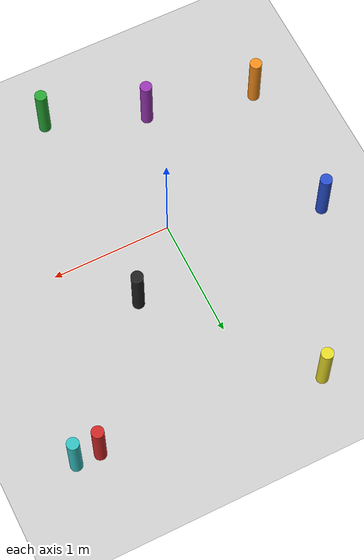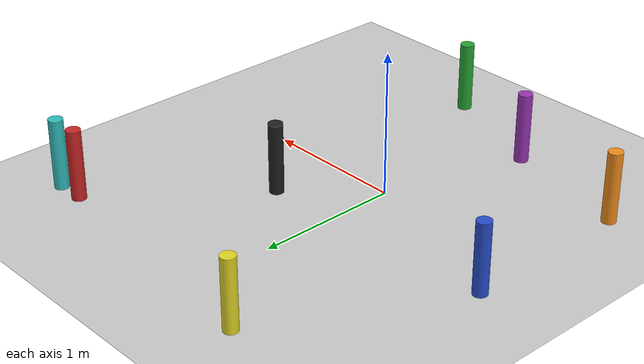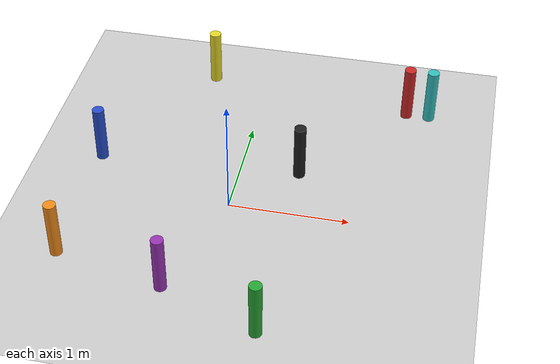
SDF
<sdf version="1.6">
 <world name="default">
  <include><uri>model://ground_plane</uri></include>
  <include><uri>model://sun</uri></include>
  <scene><shadows>false</shadows></scene>
  <physics type="ode">
   <real_time_update_rate>1000.0</real_time_update_rate>
   <max_step_size>0.001</max_step_size>
   <real_time_factor>1</real_time_factor>
   <ode>
    <solver>
     <type>quick</type>
     <iters>150</iters>
     <precon_iters>0</precon_iters>
     <sor>1.400000</sor>
     <use_dynamic_moi_rescaling>1</use_dynamic_moi_rescaling>
    </solver>
    <constraints>
     <cfm>0.00001</cfm>
     <erp>0.2</erp>
     <contact_max_correcting_vel>2000.000000</contact_max_correcting_vel>
     <contact_surface_layer>0.01000</contact_surface_layer>
    </constraints>
   </ode>
  </physics>
  <model name="turtlebot3_dqn_obstacles">
   <plugin name="obstacles" filename="libobstacles.so"/>
   <include><uri>model://cylinders/obstacles</uri></include>
  </model>
 </world>
</sdf>

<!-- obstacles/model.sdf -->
<sdf version='1.6'>
  <model name='obstacles'>
    <pose frame=''>0 0 0 0 -0 0</pose>
    <link name='obstacle'>
      <collision name='obstacle_1'>
        <pose>-0.3 -1.0 0.25 0 0 0</pose>
        <geometry>
          <cylinder>
            <radius>0.05</radius>
            <length>0.5</length>
          </cylinder>
        </geometry>
        <max_contacts>10</max_contacts>
        <surface>
          <bounce/>
          <friction>
            <ode/>
          </friction>
          <contact>
            <ode/>
          </contact>
        </surface>
      </collision>

      <visual name='obstacle_1'>
        <pose>-0.3 -1.0 0.25 0 0 0</pose>
        <geometry>
          <cylinder>
            <radius>0.05</radius>
            <length>0.5</length>
          </cylinder>
        </geometry>
        <material>
          <script>
            <uri>file://media/materials/scripts/gazebo.material</uri>
            <name>Gazebo/Purple</name>
          </script>
        </material>
      </visual>

      <collision name='obstacle_2'>
        <pose>-1.2 -0.8 0.25 0 0 0</pose>
        <geometry>
          <cylinder>
            <radius>0.05</radius>
            <length>0.5</length>
          </cylinder>
        </geometry>
        <max_contacts>10</max_contacts>
        <surface>
          <bounce/>
          <friction>
            <ode/>
          </friction>
          <contact>
            <ode/>
          </contact>
        </surface>
      </collision>

      <visual name='obstacle_2'>
        <pose>-1.2 -0.8 0.25 0 0 0</pose>
        <geometry>
          <cylinder>
            <radius>0.05</radius>
            <length>0.5</length>
          </cylinder>
        </geometry>
        <material>
          <script>
            <uri>file://media/materials/scripts/gazebo.material</uri>
            <name>Gazebo/Orange</name>
          </script>
        </material>
      </visual>

      <collision name='obstacle_3'>
        <pose>-0.5 1.7 0.25 0 0 0</pose>
        <geometry>
          <cylinder>
            <radius>0.05</radius>
            <length>0.5</length>
          </cylinder>
        </geometry>
        <max_contacts>10</max_contacts>
        <surface>
          <bounce/>
          <friction>
            <ode/>
          </friction>
          <contact>
            <ode/>
          </contact>
        </surface>
      </collision>

      <visual name='obstacle_3'>
        <pose>-0.5 1.7 0.25 0 0 0</pose>
        <geometry>
          <cylinder>
            <radius>0.05</radius>
            <length>0.5</length>
          </cylinder>
        </geometry>
        <material>
          <script>
            <uri>file://media/materials/scripts/gazebo.material</uri>
            <name>Gazebo/Yellow</name>
          </script>
        </material>
      </visual>

      <collision name='obstacle_4'>
        <pose>-1.2 0.4 0.25 0 0 0</pose>
        <geometry>
          <cylinder>
            <radius>0.05</radius>
            <length>0.5</length>
          </cylinder>
        </geometry>
        <max_contacts>10</max_contacts>
        <surface>
          <bounce/>
          <friction>
            <ode/>
          </friction>
          <contact>
            <ode/>
          </contact>
        </surface>
      </collision>

      <visual name='obstacle_4'>
        <pose>-1.2 0.4 0.25 0 0 0</pose>
        <geometry>
          <cylinder>
            <radius>0.05</radius>
            <length>0.5</length>
          </cylinder>
        </geometry>
        <material>
          <script>
            <uri>file://media/materials/scripts/gazebo.material</uri>
            <name>Gazebo/Blue</name>
          </script>
        </material>
      </visual>

      <collision name='obstacle_5'>
        <pose>0.5 -1.3 0.25 0 0 0</pose>
        <geometry>
          <cylinder>
            <radius>0.05</radius>
            <length>0.5</length>
          </cylinder>
        </geometry>
        <max_contacts>10</max_contacts>
        <surface>
          <bounce/>
          <friction>
            <ode/>
          </friction>
          <contact>
            <ode/>
          </contact>
        </surface>
      </collision>

      <visual name='obstacle_5'>
        <pose>0.5 -1.3 0.25 0 0 0</pose>
        <geometry>
          <cylinder>
            <radius>0.05</radius>
            <length>0.5</length>
          </cylinder>
        </geometry>
        <material>
          <script>
            <uri>file://media/materials/scripts/gazebo.material</uri>
            <name>Gazebo/Green</name>
          </script>
        </material>
      </visual>

      <collision name='obstacle_6'>
        <pose>1.3 1.5 0.25 0 0 0</pose>
        <geometry>
          <cylinder>
            <radius>0.05</radius>
            <length>0.5</length>
          </cylinder>
        </geometry>
        <max_contacts>10</max_contacts>
        <surface>
          <bounce/>
          <friction>
            <ode/>
          </friction>
          <contact>
            <ode/>
          </contact>
        </surface>
      </collision>

      <visual name='obstacle_6'>
        <pose>1.3 1.5 0.25 0 0 0</pose>
        <geometry>
          <cylinder>
            <radius>0.05</radius>
            <length>0.5</length>
          </cylinder>
        </geometry>
        <material>
          <script>
            <uri>file://media/materials/scripts/gazebo.material</uri>
            <name>Gazebo/Red</name>
          </script>
        </material>
      </visual>

      <collision name='obstacle_7'>
        <pose>0.5 0.5 0.25 0 0 0</pose>
        <geometry>
          <cylinder>
            <radius>0.05</radius>
            <length>0.5</length>
          </cylinder>
        </geometry>
        <max_contacts>10</max_contacts>
        <surface>
          <bounce/>
          <friction>
            <ode/>
          </friction>
          <contact>
            <ode/>
          </contact>
        </surface>
      </collision>

      <visual name='obstacle_7'>
        <pose>0.5 0.5 0.25 0 0 0</pose>
        <geometry>
          <cylinder>
            <radius>0.05</radius>
            <length>0.5</length>
          </cylinder>
        </geometry>
        <material>
          <script>
            <uri>file://media/materials/scripts/gazebo.material</uri>
            <name>Gazebo/Black</name>
          </script>
        </material>
      </visual>

      <collision name='obstacle_8'>
        <pose>1.5 1.5 0.25 0 0 0</pose>
        <geometry>
          <cylinder>
            <radius>0.05</radius>
            <length>0.5</length>
          </cylinder>
        </geometry>
        <max_contacts>10</max_contacts>
        <surface>
          <bounce/>
          <friction>
            <ode/>
          </friction>
          <contact>
            <ode/>
          </contact>
        </surface>
      </collision>

      <visual name='obstacle_8'>
        <pose>1.5 1.5 0.25 0 0 0</pose>
        <geometry>
          <cylinder>
            <radius>0.05</radius>
            <length>0.5</length>
          </cylinder>
        </geometry>
        <material>
          <script>
            <uri>file://media/materials/scripts/gazebo.material</uri>
            <name>Gazebo/Turquoise</name>
          </script>
        </material>
      </visual>

    </link>
    <static>1</static>

  </model>
</sdf>
